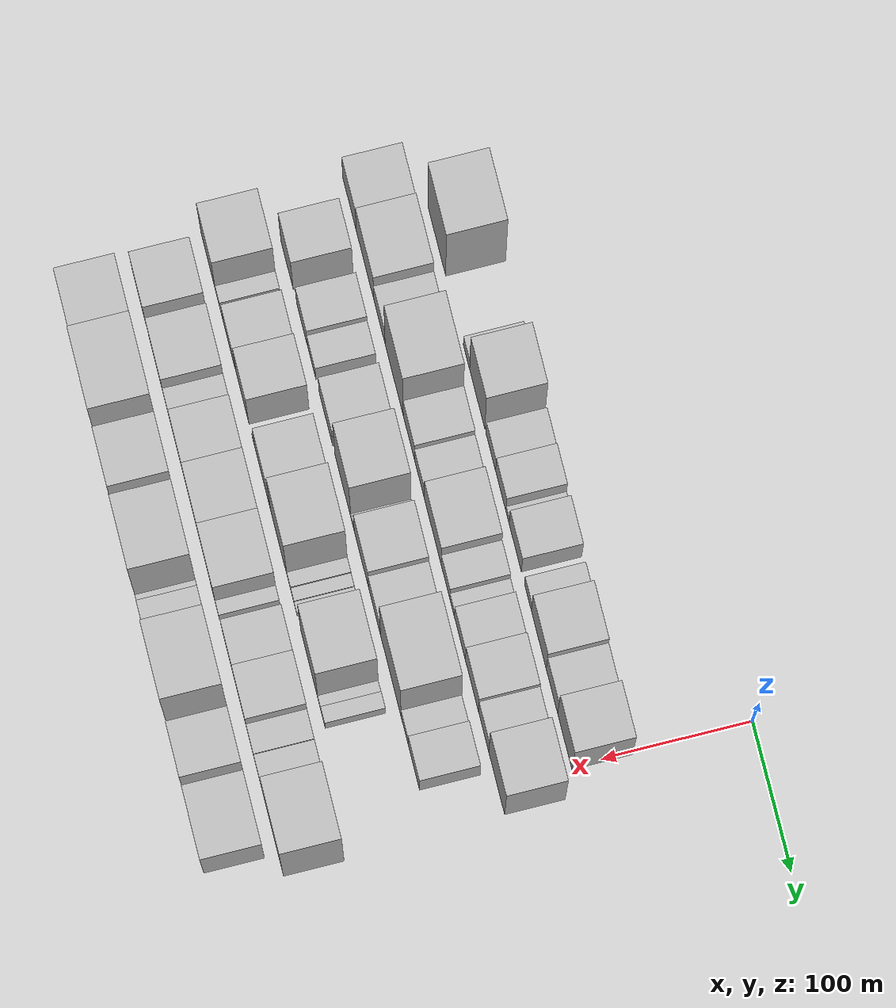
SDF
<sdf version="1.6">
 <world name="default">
  <include><name>ground_plane_1</name><uri>model://HANNAS_ground_plane</uri></include>
  <model name="building_14">
   <static>1</static>
   <pose>100.0000 -353.8614 0 0.000000 0.000000 0.000000</pose>
   <link name="link">
    <pose>0 0 72.00 0 0 0</pose>
    <collision name="collision"><geometry><box><size>40.0000 47.6542 144.0000</size></box></geometry></collision>
    <visual name="visual">
     <cast_shadows>0</cast_shadows>
     <geometry><box><size>40.0000 47.6542 144.0000</size></box></geometry>
     <material>
      <script>
       <uri>model://HANNAS_wall/materials/scripts</uri>
       <uri>model://HANNAS_wall/materials/textures</uri>
       <name>vrc/HANNAS_wall</name>
      </script>
     </material>
    </visual>
   </link>
  </model>
  <model name="building_15">
   <static>1</static>
   <pose>100.0000 -274.9148 0 0.000000 0.000000 0.000000</pose>
   <link name="link">
    <pose>0 0 16.50 0 0 0</pose>
    <collision name="collision"><geometry><box><size>40.0000 16.7463 33.0000</size></box></geometry></collision>
    <visual name="visual">
     <cast_shadows>0</cast_shadows>
     <geometry><box><size>40.0000 16.7463 33.0000</size></box></geometry>
     <material>
      <script>
       <uri>model://HANNAS_wall/materials/scripts</uri>
       <uri>model://HANNAS_wall/materials/textures</uri>
       <name>vrc/HANNAS_wall</name>
      </script>
     </material>
    </visual>
   </link>
  </model>
  <model name="building_16">
   <static>1</static>
   <pose>100.0000 -246.4983 0 0.000000 0.000000 0.000000</pose>
   <link name="link">
    <pose>0 0 61.50 0 0 0</pose>
    <collision name="collision"><geometry><box><size>40.0000 40.0867 123.0000</size></box></geometry></collision>
    <visual name="visual">
     <cast_shadows>0</cast_shadows>
     <geometry><box><size>40.0000 40.0867 123.0000</size></box></geometry>
     <material>
      <script>
       <uri>model://HANNAS_wall/materials/scripts</uri>
       <uri>model://HANNAS_wall/materials/textures</uri>
       <name>vrc/HANNAS_wall</name>
      </script>
     </material>
    </visual>
   </link>
  </model>
  <model name="building_17">
   <static>1</static>
   <pose>100.0000 -210.7944 0 0.000000 0.000000 0.000000</pose>
   <link name="link">
    <pose>0 0 22.50 0 0 0</pose>
    <collision name="collision"><geometry><box><size>40.0000 25.3211 45.0000</size></box></geometry></collision>
    <visual name="visual">
     <cast_shadows>0</cast_shadows>
     <geometry><box><size>40.0000 25.3211 45.0000</size></box></geometry>
     <material>
      <script>
       <uri>model://HANNAS_wall/materials/scripts</uri>
       <uri>model://HANNAS_wall/materials/textures</uri>
       <name>vrc/HANNAS_wall</name>
      </script>
     </material>
    </visual>
   </link>
  </model>
  <model name="building_18">
   <static>1</static>
   <pose>100.0000 -184.6230 0 0.000000 0.000000 0.000000</pose>
   <link name="link">
    <pose>0 0 27.00 0 0 0</pose>
    <collision name="collision"><geometry><box><size>40.0000 27.0217 54.0000</size></box></geometry></collision>
    <visual name="visual">
     <cast_shadows>0</cast_shadows>
     <geometry><box><size>40.0000 27.0217 54.0000</size></box></geometry>
     <material>
      <script>
       <uri>model://HANNAS_wall/materials/scripts</uri>
       <uri>model://HANNAS_wall/materials/textures</uri>
       <name>vrc/HANNAS_wall</name>
      </script>
     </material>
    </visual>
   </link>
  </model>
  <model name="building_19">
   <static>1</static>
   <pose>100.0000 -166.8143 0 0.000000 0.000000 0.000000</pose>
   <link name="link">
    <pose>0 0 10.50 0 0 0</pose>
    <collision name="collision"><geometry><box><size>40.0000 8.5957 21.0000</size></box></geometry></collision>
    <visual name="visual">
     <cast_shadows>0</cast_shadows>
     <geometry><box><size>40.0000 8.5957 21.0000</size></box></geometry>
     <material>
      <script>
       <uri>model://HANNAS_wall/materials/scripts</uri>
       <uri>model://HANNAS_wall/materials/textures</uri>
       <name>vrc/HANNAS_wall</name>
      </script>
     </material>
    </visual>
   </link>
  </model>
  <model name="building_20">
   <static>1</static>
   <pose>100.0000 -146.4526 0 0.000000 0.000000 0.000000</pose>
   <link name="link">
    <pose>0 0 30.00 0 0 0</pose>
    <collision name="collision"><geometry><box><size>40.0000 32.1276 60.0000</size></box></geometry></collision>
    <visual name="visual">
     <cast_shadows>0</cast_shadows>
     <geometry><box><size>40.0000 32.1276 60.0000</size></box></geometry>
     <material>
      <script>
       <uri>model://HANNAS_wall/materials/scripts</uri>
       <uri>model://HANNAS_wall/materials/textures</uri>
       <name>vrc/HANNAS_wall</name>
      </script>
     </material>
    </visual>
   </link>
  </model>
  <model name="building_21">
   <static>1</static>
   <pose>100.0000 -113.3025 0 0.000000 0.000000 0.000000</pose>
   <link name="link">
    <pose>0 0 16.50 0 0 0</pose>
    <collision name="collision"><geometry><box><size>40.0000 18.1728 33.0000</size></box></geometry></collision>
    <visual name="visual">
     <cast_shadows>0</cast_shadows>
     <geometry><box><size>40.0000 18.1728 33.0000</size></box></geometry>
     <material>
      <script>
       <uri>model://HANNAS_wall/materials/scripts</uri>
       <uri>model://HANNAS_wall/materials/textures</uri>
       <name>vrc/HANNAS_wall</name>
      </script>
     </material>
    </visual>
   </link>
  </model>
  <model name="building_22">
   <static>1</static>
   <pose>100.0000 -84.8160 0 0.000000 0.000000 0.000000</pose>
   <link name="link">
    <pose>0 0 37.50 0 0 0</pose>
    <collision name="collision"><geometry><box><size>40.0000 38.8002 75.0000</size></box></geometry></collision>
    <visual name="visual">
     <cast_shadows>0</cast_shadows>
     <geometry><box><size>40.0000 38.8002 75.0000</size></box></geometry>
     <material>
      <script>
       <uri>model://HANNAS_wall/materials/scripts</uri>
       <uri>model://HANNAS_wall/materials/textures</uri>
       <name>vrc/HANNAS_wall</name>
      </script>
     </material>
    </visual>
   </link>
  </model>
  <model name="building_23">
   <static>1</static>
   <pose>100.0000 -50.5812 0 0.000000 0.000000 0.000000</pose>
   <link name="link">
    <pose>0 0 28.50 0 0 0</pose>
    <collision name="collision"><geometry><box><size>40.0000 29.6695 57.0000</size></box></geometry></collision>
    <visual name="visual">
     <cast_shadows>0</cast_shadows>
     <geometry><box><size>40.0000 29.6695 57.0000</size></box></geometry>
     <material>
      <script>
       <uri>model://HANNAS_wall/materials/scripts</uri>
       <uri>model://HANNAS_wall/materials/textures</uri>
       <name>vrc/HANNAS_wall</name>
      </script>
     </material>
    </visual>
   </link>
  </model>
  <model name="building_24">
   <static>1</static>
   <pose>100.0000 -17.0833 0 0.000000 0.000000 0.000000</pose>
   <link name="link">
    <pose>0 0 48.00 0 0 0</pose>
    <collision name="collision"><geometry><box><size>40.0000 37.3264 96.0000</size></box></geometry></collision>
    <visual name="visual">
     <cast_shadows>0</cast_shadows>
     <geometry><box><size>40.0000 37.3264 96.0000</size></box></geometry>
     <material>
      <script>
       <uri>model://HANNAS_wall/materials/scripts</uri>
       <uri>model://HANNAS_wall/materials/textures</uri>
       <name>vrc/HANNAS_wall</name>
      </script>
     </material>
    </visual>
   </link>
  </model>
  <model name="building_57">
   <static>1</static>
   <pose>149.0000 -390.7551 0 0.000000 0.000000 0.000000</pose>
   <link name="link">
    <pose>0 0 34.50 0 0 0</pose>
    <collision name="collision"><geometry><box><size>40.0000 36.4168 69.0000</size></box></geometry></collision>
    <visual name="visual">
     <cast_shadows>0</cast_shadows>
     <geometry><box><size>40.0000 36.4168 69.0000</size></box></geometry>
     <material>
      <script>
       <uri>model://HANNAS_wall/materials/scripts</uri>
       <uri>model://HANNAS_wall/materials/textures</uri>
       <name>vrc/HANNAS_wall</name>
      </script>
     </material>
    </visual>
   </link>
  </model>
  <model name="building_58">
   <static>1</static>
   <pose>149.0000 -349.2322 0 0.000000 0.000000 0.000000</pose>
   <link name="link">
    <pose>0 0 40.50 0 0 0</pose>
    <collision name="collision"><geometry><box><size>40.0000 46.6289 81.0000</size></box></geometry></collision>
    <visual name="visual">
     <cast_shadows>0</cast_shadows>
     <geometry><box><size>40.0000 46.6289 81.0000</size></box></geometry>
     <material>
      <script>
       <uri>model://HANNAS_wall/materials/scripts</uri>
       <uri>model://HANNAS_wall/materials/textures</uri>
       <name>vrc/HANNAS_wall</name>
      </script>
     </material>
    </visual>
   </link>
  </model>
  <model name="building_59">
   <static>1</static>
   <pose>149.0000 -310.9135 0 0.000000 0.000000 0.000000</pose>
   <link name="link">
    <pose>0 0 25.50 0 0 0</pose>
    <collision name="collision"><geometry><box><size>40.0000 30.0086 51.0000</size></box></geometry></collision>
    <visual name="visual">
     <cast_shadows>0</cast_shadows>
     <geometry><box><size>40.0000 30.0086 51.0000</size></box></geometry>
     <material>
      <script>
       <uri>model://HANNAS_wall/materials/scripts</uri>
       <uri>model://HANNAS_wall/materials/textures</uri>
       <name>vrc/HANNAS_wall</name>
      </script>
     </material>
    </visual>
   </link>
  </model>
  <model name="building_60">
   <static>1</static>
   <pose>149.0000 -271.8785 0 0.000000 0.000000 0.000000</pose>
   <link name="link">
    <pose>0 0 72.00 0 0 0</pose>
    <collision name="collision"><geometry><box><size>40.0000 48.0614 144.0000</size></box></geometry></collision>
    <visual name="visual">
     <cast_shadows>0</cast_shadows>
     <geometry><box><size>40.0000 48.0614 144.0000</size></box></geometry>
     <material>
      <script>
       <uri>model://HANNAS_wall/materials/scripts</uri>
       <uri>model://HANNAS_wall/materials/textures</uri>
       <name>vrc/HANNAS_wall</name>
      </script>
     </material>
    </visual>
   </link>
  </model>
  <model name="building_61">
   <static>1</static>
   <pose>149.0000 -232.8323 0 0.000000 0.000000 0.000000</pose>
   <link name="link">
    <pose>0 0 30.00 0 0 0</pose>
    <collision name="collision"><geometry><box><size>40.0000 30.0309 60.0000</size></box></geometry></collision>
    <visual name="visual">
     <cast_shadows>0</cast_shadows>
     <geometry><box><size>40.0000 30.0309 60.0000</size></box></geometry>
     <material>
      <script>
       <uri>model://HANNAS_wall/materials/scripts</uri>
       <uri>model://HANNAS_wall/materials/textures</uri>
       <name>vrc/HANNAS_wall</name>
      </script>
     </material>
    </visual>
   </link>
  </model>
  <model name="building_62">
   <static>1</static>
   <pose>149.0000 -204.7419 0 0.000000 0.000000 0.000000</pose>
   <link name="link">
    <pose>0 0 22.50 0 0 0</pose>
    <collision name="collision"><geometry><box><size>40.0000 26.1500 45.0000</size></box></geometry></collision>
    <visual name="visual">
     <cast_shadows>0</cast_shadows>
     <geometry><box><size>40.0000 26.1500 45.0000</size></box></geometry>
     <material>
      <script>
       <uri>model://HANNAS_wall/materials/scripts</uri>
       <uri>model://HANNAS_wall/materials/textures</uri>
       <name>vrc/HANNAS_wall</name>
      </script>
     </material>
    </visual>
   </link>
  </model>
  <model name="building_63">
   <static>1</static>
   <pose>149.0000 -169.5658 0 0.000000 0.000000 0.000000</pose>
   <link name="link">
    <pose>0 0 37.50 0 0 0</pose>
    <collision name="collision"><geometry><box><size>40.0000 44.2023 75.0000</size></box></geometry></collision>
    <visual name="visual">
     <cast_shadows>0</cast_shadows>
     <geometry><box><size>40.0000 44.2023 75.0000</size></box></geometry>
     <material>
      <script>
       <uri>model://HANNAS_wall/materials/scripts</uri>
       <uri>model://HANNAS_wall/materials/textures</uri>
       <name>vrc/HANNAS_wall</name>
      </script>
     </material>
    </visual>
   </link>
  </model>
  <model name="building_64">
   <static>1</static>
   <pose>149.0000 -136.0340 0 0.000000 0.000000 0.000000</pose>
   <link name="link">
    <pose>0 0 22.50 0 0 0</pose>
    <collision name="collision"><geometry><box><size>40.0000 22.8614 45.0000</size></box></geometry></collision>
    <visual name="visual">
     <cast_shadows>0</cast_shadows>
     <geometry><box><size>40.0000 22.8614 45.0000</size></box></geometry>
     <material>
      <script>
       <uri>model://HANNAS_wall/materials/scripts</uri>
       <uri>model://HANNAS_wall/materials/textures</uri>
       <name>vrc/HANNAS_wall</name>
      </script>
     </material>
    </visual>
   </link>
  </model>
  <model name="building_65">
   <static>1</static>
   <pose>149.0000 -118.4109 0 0.000000 0.000000 0.000000</pose>
   <link name="link">
    <pose>0 0 13.50 0 0 0</pose>
    <collision name="collision"><geometry><box><size>40.0000 12.3848 27.0000</size></box></geometry></collision>
    <visual name="visual">
     <cast_shadows>0</cast_shadows>
     <geometry><box><size>40.0000 12.3848 27.0000</size></box></geometry>
     <material>
      <script>
       <uri>model://HANNAS_wall/materials/scripts</uri>
       <uri>model://HANNAS_wall/materials/textures</uri>
       <name>vrc/HANNAS_wall</name>
      </script>
     </material>
    </visual>
   </link>
  </model>
  <model name="building_66">
   <static>1</static>
   <pose>149.0000 -97.8057 0 0.000000 0.000000 0.000000</pose>
   <link name="link">
    <pose>0 0 25.50 0 0 0</pose>
    <collision name="collision"><geometry><box><size>40.0000 28.8256 51.0000</size></box></geometry></collision>
    <visual name="visual">
     <cast_shadows>0</cast_shadows>
     <geometry><box><size>40.0000 28.8256 51.0000</size></box></geometry>
     <material>
      <script>
       <uri>model://HANNAS_wall/materials/scripts</uri>
       <uri>model://HANNAS_wall/materials/textures</uri>
       <name>vrc/HANNAS_wall</name>
      </script>
     </material>
    </visual>
   </link>
  </model>
  <model name="building_67">
   <static>1</static>
   <pose>149.0000 -66.2988 0 0.000000 0.000000 0.000000</pose>
   <link name="link">
    <pose>0 0 33.00 0 0 0</pose>
    <collision name="collision"><geometry><box><size>40.0000 34.1881 66.0000</size></box></geometry></collision>
    <visual name="visual">
     <cast_shadows>0</cast_shadows>
     <geometry><box><size>40.0000 34.1881 66.0000</size></box></geometry>
     <material>
      <script>
       <uri>model://HANNAS_wall/materials/scripts</uri>
       <uri>model://HANNAS_wall/materials/textures</uri>
       <name>vrc/HANNAS_wall</name>
      </script>
     </material>
    </visual>
   </link>
  </model>
  <model name="building_68">
   <static>1</static>
   <pose>149.0000 -35.6842 0 0.000000 0.000000 0.000000</pose>
   <link name="link">
    <pose>0 0 27.00 0 0 0</pose>
    <collision name="collision"><geometry><box><size>40.0000 27.0412 54.0000</size></box></geometry></collision>
    <visual name="visual">
     <cast_shadows>0</cast_shadows>
     <geometry><box><size>40.0000 27.0412 54.0000</size></box></geometry>
     <material>
      <script>
       <uri>model://HANNAS_wall/materials/scripts</uri>
       <uri>model://HANNAS_wall/materials/textures</uri>
       <name>vrc/HANNAS_wall</name>
      </script>
     </material>
    </visual>
   </link>
  </model>
  <model name="building_69">
   <static>1</static>
   <pose>149.0000 -1.4894 0 0.000000 0.000000 0.000000</pose>
   <link name="link">
    <pose>0 0 55.50 0 0 0</pose>
    <collision name="collision"><geometry><box><size>40.0000 41.3484 111.0000</size></box></geometry></collision>
    <visual name="visual">
     <cast_shadows>0</cast_shadows>
     <geometry><box><size>40.0000 41.3484 111.0000</size></box></geometry>
     <material>
      <script>
       <uri>model://HANNAS_wall/materials/scripts</uri>
       <uri>model://HANNAS_wall/materials/textures</uri>
       <name>vrc/HANNAS_wall</name>
      </script>
     </material>
    </visual>
   </link>
  </model>
  <model name="building_110">
   <static>1</static>
   <pose>198.0000 -361.9411 0 0.000000 0.000000 0.000000</pose>
   <link name="link">
    <pose>0 0 48.00 0 0 0</pose>
    <collision name="collision"><geometry><box><size>40.0000 33.1321 96.0000</size></box></geometry></collision>
    <visual name="visual">
     <cast_shadows>0</cast_shadows>
     <geometry><box><size>40.0000 33.1321 96.0000</size></box></geometry>
     <material>
      <script>
       <uri>model://HANNAS_wall/materials/scripts</uri>
       <uri>model://HANNAS_wall/materials/textures</uri>
       <name>vrc/HANNAS_wall</name>
      </script>
     </material>
    </visual>
   </link>
  </model>
  <model name="building_111">
   <static>1</static>
   <pose>198.0000 -321.6002 0 0.000000 0.000000 0.000000</pose>
   <link name="link">
    <pose>0 0 28.50 0 0 0</pose>
    <collision name="collision"><geometry><box><size>40.0000 29.5497 57.0000</size></box></geometry></collision>
    <visual name="visual">
     <cast_shadows>0</cast_shadows>
     <geometry><box><size>40.0000 29.5497 57.0000</size></box></geometry>
     <material>
      <script>
       <uri>model://HANNAS_wall/materials/scripts</uri>
       <uri>model://HANNAS_wall/materials/textures</uri>
       <name>vrc/HANNAS_wall</name>
      </script>
     </material>
    </visual>
   </link>
  </model>
  <model name="building_112">
   <static>1</static>
   <pose>198.0000 -295.6852 0 0.000000 0.000000 0.000000</pose>
   <link name="link">
    <pose>0 0 21.00 0 0 0</pose>
    <collision name="collision"><geometry><box><size>40.0000 22.2805 42.0000</size></box></geometry></collision>
    <visual name="visual">
     <cast_shadows>0</cast_shadows>
     <geometry><box><size>40.0000 22.2805 42.0000</size></box></geometry>
     <material>
      <script>
       <uri>model://HANNAS_wall/materials/scripts</uri>
       <uri>model://HANNAS_wall/materials/textures</uri>
       <name>vrc/HANNAS_wall</name>
      </script>
     </material>
    </visual>
   </link>
  </model>
  <model name="building_113">
   <static>1</static>
   <pose>198.0000 -257.6338 0 0.000000 0.000000 0.000000</pose>
   <link name="link">
    <pose>0 0 30.00 0 0 0</pose>
    <collision name="collision"><geometry><box><size>40.0000 35.8221 60.0000</size></box></geometry></collision>
    <visual name="visual">
     <cast_shadows>0</cast_shadows>
     <geometry><box><size>40.0000 35.8221 60.0000</size></box></geometry>
     <material>
      <script>
       <uri>model://HANNAS_wall/materials/scripts</uri>
       <uri>model://HANNAS_wall/materials/textures</uri>
       <name>vrc/HANNAS_wall</name>
      </script>
     </material>
    </visual>
   </link>
  </model>
  <model name="building_114">
   <static>1</static>
   <pose>198.0000 -212.4608 0 0.000000 0.000000 0.000000</pose>
   <link name="link">
    <pose>0 0 64.50 0 0 0</pose>
    <collision name="collision"><geometry><box><size>40.0000 42.5239 129.0000</size></box></geometry></collision>
    <visual name="visual">
     <cast_shadows>0</cast_shadows>
     <geometry><box><size>40.0000 42.5239 129.0000</size></box></geometry>
     <material>
      <script>
       <uri>model://HANNAS_wall/materials/scripts</uri>
       <uri>model://HANNAS_wall/materials/textures</uri>
       <name>vrc/HANNAS_wall</name>
      </script>
     </material>
    </visual>
   </link>
  </model>
  <model name="building_115">
   <static>1</static>
   <pose>198.0000 -186.7463 0 0.000000 0.000000 0.000000</pose>
   <link name="link">
    <pose>0 0 9.00 0 0 0</pose>
    <collision name="collision"><geometry><box><size>40.0000 8.9051 18.0000</size></box></geometry></collision>
    <visual name="visual">
     <cast_shadows>0</cast_shadows>
     <geometry><box><size>40.0000 8.9051 18.0000</size></box></geometry>
     <material>
      <script>
       <uri>model://HANNAS_wall/materials/scripts</uri>
       <uri>model://HANNAS_wall/materials/textures</uri>
       <name>vrc/HANNAS_wall</name>
      </script>
     </material>
    </visual>
   </link>
  </model>
  <model name="building_116">
   <static>1</static>
   <pose>198.0000 -163.3867 0 0.000000 0.000000 0.000000</pose>
   <link name="link">
    <pose>0 0 36.00 0 0 0</pose>
    <collision name="collision"><geometry><box><size>40.0000 37.8140 72.0000</size></box></geometry></collision>
    <visual name="visual">
     <cast_shadows>0</cast_shadows>
     <geometry><box><size>40.0000 37.8140 72.0000</size></box></geometry>
     <material>
      <script>
       <uri>model://HANNAS_wall/materials/scripts</uri>
       <uri>model://HANNAS_wall/materials/textures</uri>
       <name>vrc/HANNAS_wall</name>
      </script>
     </material>
    </visual>
   </link>
  </model>
  <model name="building_117">
   <static>1</static>
   <pose>198.0000 -128.5508 0 0.000000 0.000000 0.000000</pose>
   <link name="link">
    <pose>0 0 27.00 0 0 0</pose>
    <collision name="collision"><geometry><box><size>40.0000 31.8577 54.0000</size></box></geometry></collision>
    <visual name="visual">
     <cast_shadows>0</cast_shadows>
     <geometry><box><size>40.0000 31.8577 54.0000</size></box></geometry>
     <material>
      <script>
       <uri>model://HANNAS_wall/materials/scripts</uri>
       <uri>model://HANNAS_wall/materials/textures</uri>
       <name>vrc/HANNAS_wall</name>
      </script>
     </material>
    </visual>
   </link>
  </model>
  <model name="building_118">
   <static>1</static>
   <pose>198.0000 -85.4054 0 0.000000 0.000000 0.000000</pose>
   <link name="link">
    <pose>0 0 69.00 0 0 0</pose>
    <collision name="collision"><geometry><box><size>40.0000 54.4332 138.0000</size></box></geometry></collision>
    <visual name="visual">
     <cast_shadows>0</cast_shadows>
     <geometry><box><size>40.0000 54.4332 138.0000</size></box></geometry>
     <material>
      <script>
       <uri>model://HANNAS_wall/materials/scripts</uri>
       <uri>model://HANNAS_wall/materials/textures</uri>
       <name>vrc/HANNAS_wall</name>
      </script>
     </material>
    </visual>
   </link>
  </model>
  <model name="building_119">
   <static>1</static>
   <pose>198.0000 -48.5401 0 0.000000 0.000000 0.000000</pose>
   <link name="link">
    <pose>0 0 18.00 0 0 0</pose>
    <collision name="collision"><geometry><box><size>40.0000 19.2974 36.0000</size></box></geometry></collision>
    <visual name="visual">
     <cast_shadows>0</cast_shadows>
     <geometry><box><size>40.0000 19.2974 36.0000</size></box></geometry>
     <material>
      <script>
       <uri>model://HANNAS_wall/materials/scripts</uri>
       <uri>model://HANNAS_wall/materials/textures</uri>
       <name>vrc/HANNAS_wall</name>
      </script>
     </material>
    </visual>
   </link>
  </model>
  <model name="building_120">
   <static>1</static>
   <pose>198.0000 -24.1284 0 0.000000 0.000000 0.000000</pose>
   <link name="link">
    <pose>0 0 27.00 0 0 0</pose>
    <collision name="collision"><geometry><box><size>40.0000 29.5259 54.0000</size></box></geometry></collision>
    <visual name="visual">
     <cast_shadows>0</cast_shadows>
     <geometry><box><size>40.0000 29.5259 54.0000</size></box></geometry>
     <material>
      <script>
       <uri>model://HANNAS_wall/materials/scripts</uri>
       <uri>model://HANNAS_wall/materials/textures</uri>
       <name>vrc/HANNAS_wall</name>
      </script>
     </material>
    </visual>
   </link>
  </model>
  <model name="building_157">
   <static>1</static>
   <pose>247.0000 -375.6848 0 0.000000 0.000000 0.000000</pose>
   <link name="link">
    <pose>0 0 52.50 0 0 0</pose>
    <collision name="collision"><geometry><box><size>40.0000 39.7121 105.0000</size></box></geometry></collision>
    <visual name="visual">
     <cast_shadows>0</cast_shadows>
     <geometry><box><size>40.0000 39.7121 105.0000</size></box></geometry>
     <material>
      <script>
       <uri>model://HANNAS_wall/materials/scripts</uri>
       <uri>model://HANNAS_wall/materials/textures</uri>
       <name>vrc/HANNAS_wall</name>
      </script>
     </material>
    </visual>
   </link>
  </model>
  <model name="building_158">
   <static>1</static>
   <pose>247.0000 -349.9775 0 0.000000 0.000000 0.000000</pose>
   <link name="link">
    <pose>0 0 12.00 0 0 0</pose>
    <collision name="collision"><geometry><box><size>40.0000 11.7025 24.0000</size></box></geometry></collision>
    <visual name="visual">
     <cast_shadows>0</cast_shadows>
     <geometry><box><size>40.0000 11.7025 24.0000</size></box></geometry>
     <material>
      <script>
       <uri>model://HANNAS_wall/materials/scripts</uri>
       <uri>model://HANNAS_wall/materials/textures</uri>
       <name>vrc/HANNAS_wall</name>
      </script>
     </material>
    </visual>
   </link>
  </model>
  <model name="building_159">
   <static>1</static>
   <pose>247.0000 -340.3163 0 0.000000 0.000000 0.000000</pose>
   <link name="link">
    <pose>0 0 9.00 0 0 0</pose>
    <collision name="collision"><geometry><box><size>40.0000 7.6199 18.0000</size></box></geometry></collision>
    <visual name="visual">
     <cast_shadows>0</cast_shadows>
     <geometry><box><size>40.0000 7.6199 18.0000</size></box></geometry>
     <material>
      <script>
       <uri>model://HANNAS_wall/materials/scripts</uri>
       <uri>model://HANNAS_wall/materials/textures</uri>
       <name>vrc/HANNAS_wall</name>
      </script>
     </material>
    </visual>
   </link>
  </model>
  <model name="building_160">
   <static>1</static>
   <pose>247.0000 -318.7343 0 0.000000 0.000000 0.000000</pose>
   <link name="link">
    <pose>0 0 30.00 0 0 0</pose>
    <collision name="collision"><geometry><box><size>40.0000 35.5442 60.0000</size></box></geometry></collision>
    <visual name="visual">
     <cast_shadows>0</cast_shadows>
     <geometry><box><size>40.0000 35.5442 60.0000</size></box></geometry>
     <material>
      <script>
       <uri>model://HANNAS_wall/materials/scripts</uri>
       <uri>model://HANNAS_wall/materials/textures</uri>
       <name>vrc/HANNAS_wall</name>
      </script>
     </material>
    </visual>
   </link>
  </model>
  <model name="building_161">
   <static>1</static>
   <pose>247.0000 -283.8370 0 0.000000 0.000000 0.000000</pose>
   <link name="link">
    <pose>0 0 48.00 0 0 0</pose>
    <collision name="collision"><geometry><box><size>40.0000 34.2503 96.0000</size></box></geometry></collision>
    <visual name="visual">
     <cast_shadows>0</cast_shadows>
     <geometry><box><size>40.0000 34.2503 96.0000</size></box></geometry>
     <material>
      <script>
       <uri>model://HANNAS_wall/materials/scripts</uri>
       <uri>model://HANNAS_wall/materials/textures</uri>
       <name>vrc/HANNAS_wall</name>
      </script>
     </material>
    </visual>
   </link>
  </model>
  <model name="building_162">
   <static>1</static>
   <pose>247.0000 -254.6128 0 0.000000 0.000000 0.000000</pose>
   <link name="link">
    <pose>0 0 7.50 0 0 0</pose>
    <collision name="collision"><geometry><box><size>40.0000 6.1981 15.0000</size></box></geometry></collision>
    <visual name="visual">
     <cast_shadows>0</cast_shadows>
     <geometry><box><size>40.0000 6.1981 15.0000</size></box></geometry>
     <material>
      <script>
       <uri>model://HANNAS_wall/materials/scripts</uri>
       <uri>model://HANNAS_wall/materials/textures</uri>
       <name>vrc/HANNAS_wall</name>
      </script>
     </material>
    </visual>
   </link>
  </model>
  <model name="building_163">
   <static>1</static>
   <pose>247.0000 -230.2100 0 0.000000 0.000000 0.000000</pose>
   <link name="link">
    <pose>0 0 37.50 0 0 0</pose>
    <collision name="collision"><geometry><box><size>40.0000 42.6075 75.0000</size></box></geometry></collision>
    <visual name="visual">
     <cast_shadows>0</cast_shadows>
     <geometry><box><size>40.0000 42.6075 75.0000</size></box></geometry>
     <material>
      <script>
       <uri>model://HANNAS_wall/materials/scripts</uri>
       <uri>model://HANNAS_wall/materials/textures</uri>
       <name>vrc/HANNAS_wall</name>
      </script>
     </material>
    </visual>
   </link>
  </model>
  <model name="building_164">
   <static>1</static>
   <pose>247.0000 -186.5861 0 0.000000 0.000000 0.000000</pose>
   <link name="link">
    <pose>0 0 69.00 0 0 0</pose>
    <collision name="collision"><geometry><box><size>40.0000 44.6404 138.0000</size></box></geometry></collision>
    <visual name="visual">
     <cast_shadows>0</cast_shadows>
     <geometry><box><size>40.0000 44.6404 138.0000</size></box></geometry>
     <material>
      <script>
       <uri>model://HANNAS_wall/materials/scripts</uri>
       <uri>model://HANNAS_wall/materials/textures</uri>
       <name>vrc/HANNAS_wall</name>
      </script>
     </material>
    </visual>
   </link>
  </model>
  <model name="building_165">
   <static>1</static>
   <pose>247.0000 -159.1917 0 0.000000 0.000000 0.000000</pose>
   <link name="link">
    <pose>0 0 10.50 0 0 0</pose>
    <collision name="collision"><geometry><box><size>40.0000 10.1485 21.0000</size></box></geometry></collision>
    <visual name="visual">
     <cast_shadows>0</cast_shadows>
     <geometry><box><size>40.0000 10.1485 21.0000</size></box></geometry>
     <material>
      <script>
       <uri>model://HANNAS_wall/materials/scripts</uri>
       <uri>model://HANNAS_wall/materials/textures</uri>
       <name>vrc/HANNAS_wall</name>
      </script>
     </material>
    </visual>
   </link>
  </model>
  <model name="building_166">
   <static>1</static>
   <pose>247.0000 -149.6743 0 0.000000 0.000000 0.000000</pose>
   <link name="link">
    <pose>0 0 9.00 0 0 0</pose>
    <collision name="collision"><geometry><box><size>40.0000 8.8861 18.0000</size></box></geometry></collision>
    <visual name="visual">
     <cast_shadows>0</cast_shadows>
     <geometry><box><size>40.0000 8.8861 18.0000</size></box></geometry>
     <material>
      <script>
       <uri>model://HANNAS_wall/materials/scripts</uri>
       <uri>model://HANNAS_wall/materials/textures</uri>
       <name>vrc/HANNAS_wall</name>
      </script>
     </material>
    </visual>
   </link>
  </model>
  <model name="building_167">
   <static>1</static>
   <pose>247.0000 -141.5087 0 0.000000 0.000000 0.000000</pose>
   <link name="link">
    <pose>0 0 7.50 0 0 0</pose>
    <collision name="collision"><geometry><box><size>40.0000 7.4452 15.0000</size></box></geometry></collision>
    <visual name="visual">
     <cast_shadows>0</cast_shadows>
     <geometry><box><size>40.0000 7.4452 15.0000</size></box></geometry>
     <material>
      <script>
       <uri>model://HANNAS_wall/materials/scripts</uri>
       <uri>model://HANNAS_wall/materials/textures</uri>
       <name>vrc/HANNAS_wall</name>
      </script>
     </material>
    </visual>
   </link>
  </model>
  <model name="building_168">
   <static>1</static>
   <pose>247.0000 -105.0985 0 0.000000 0.000000 0.000000</pose>
   <link name="link">
    <pose>0 0 64.50 0 0 0</pose>
    <collision name="collision"><geometry><box><size>40.0000 45.3751 129.0000</size></box></geometry></collision>
    <visual name="visual">
     <cast_shadows>0</cast_shadows>
     <geometry><box><size>40.0000 45.3751 129.0000</size></box></geometry>
     <material>
      <script>
       <uri>model://HANNAS_wall/materials/scripts</uri>
       <uri>model://HANNAS_wall/materials/textures</uri>
       <name>vrc/HANNAS_wall</name>
      </script>
     </material>
    </visual>
   </link>
  </model>
  <model name="building_169">
   <static>1</static>
   <pose>247.0000 -78.2397 0 0.000000 0.000000 0.000000</pose>
   <link name="link">
    <pose>0 0 9.00 0 0 0</pose>
    <collision name="collision"><geometry><box><size>40.0000 8.3426 18.0000</size></box></geometry></collision>
    <visual name="visual">
     <cast_shadows>0</cast_shadows>
     <geometry><box><size>40.0000 8.3426 18.0000</size></box></geometry>
     <material>
      <script>
       <uri>model://HANNAS_wall/materials/scripts</uri>
       <uri>model://HANNAS_wall/materials/textures</uri>
       <name>vrc/HANNAS_wall</name>
      </script>
     </material>
    </visual>
   </link>
  </model>
  <model name="building_170">
   <static>1</static>
   <pose>247.0000 -68.4875 0 0.000000 0.000000 0.000000</pose>
   <link name="link">
    <pose>0 0 13.50 0 0 0</pose>
    <collision name="collision"><geometry><box><size>40.0000 11.1616 27.0000</size></box></geometry></collision>
    <visual name="visual">
     <cast_shadows>0</cast_shadows>
     <geometry><box><size>40.0000 11.1616 27.0000</size></box></geometry>
     <material>
      <script>
       <uri>model://HANNAS_wall/materials/scripts</uri>
       <uri>model://HANNAS_wall/materials/textures</uri>
       <name>vrc/HANNAS_wall</name>
      </script>
     </material>
    </visual>
   </link>
  </model>
  <model name="building_201">
   <static>1</static>
   <pose>296.0000 -365.0567 0 0.000000 0.000000 0.000000</pose>
   <link name="link">
    <pose>0 0 31.50 0 0 0</pose>
    <collision name="collision"><geometry><box><size>40.0000 37.3534 63.0000</size></box></geometry></collision>
    <visual name="visual">
     <cast_shadows>0</cast_shadows>
     <geometry><box><size>40.0000 37.3534 63.0000</size></box></geometry>
     <material>
      <script>
       <uri>model://HANNAS_wall/materials/scripts</uri>
       <uri>model://HANNAS_wall/materials/textures</uri>
       <name>vrc/HANNAS_wall</name>
      </script>
     </material>
    </visual>
   </link>
  </model>
  <model name="building_202">
   <static>1</static>
   <pose>296.0000 -317.7192 0 0.000000 0.000000 0.000000</pose>
   <link name="link">
    <pose>0 0 34.50 0 0 0</pose>
    <collision name="collision"><geometry><box><size>40.0000 41.3217 69.0000</size></box></geometry></collision>
    <visual name="visual">
     <cast_shadows>0</cast_shadows>
     <geometry><box><size>40.0000 41.3217 69.0000</size></box></geometry>
     <material>
      <script>
       <uri>model://HANNAS_wall/materials/scripts</uri>
       <uri>model://HANNAS_wall/materials/textures</uri>
       <name>vrc/HANNAS_wall</name>
      </script>
     </material>
    </visual>
   </link>
  </model>
  <model name="building_203">
   <static>1</static>
   <pose>296.0000 -287.2829 0 0.000000 0.000000 0.000000</pose>
   <link name="link">
    <pose>0 0 18.00 0 0 0</pose>
    <collision name="collision"><geometry><box><size>40.0000 19.5509 36.0000</size></box></geometry></collision>
    <visual name="visual">
     <cast_shadows>0</cast_shadows>
     <geometry><box><size>40.0000 19.5509 36.0000</size></box></geometry>
     <material>
      <script>
       <uri>model://HANNAS_wall/materials/scripts</uri>
       <uri>model://HANNAS_wall/materials/textures</uri>
       <name>vrc/HANNAS_wall</name>
      </script>
     </material>
    </visual>
   </link>
  </model>
  <model name="building_204">
   <static>1</static>
   <pose>296.0000 -259.6409 0 0.000000 0.000000 0.000000</pose>
   <link name="link">
    <pose>0 0 34.50 0 0 0</pose>
    <collision name="collision"><geometry><box><size>40.0000 35.7330 69.0000</size></box></geometry></collision>
    <visual name="visual">
     <cast_shadows>0</cast_shadows>
     <geometry><box><size>40.0000 35.7330 69.0000</size></box></geometry>
     <material>
      <script>
       <uri>model://HANNAS_wall/materials/scripts</uri>
       <uri>model://HANNAS_wall/materials/textures</uri>
       <name>vrc/HANNAS_wall</name>
      </script>
     </material>
    </visual>
   </link>
  </model>
  <model name="building_205">
   <static>1</static>
   <pose>296.0000 -221.0312 0 0.000000 0.000000 0.000000</pose>
   <link name="link">
    <pose>0 0 36.00 0 0 0</pose>
    <collision name="collision"><geometry><box><size>40.0000 41.4863 72.0000</size></box></geometry></collision>
    <visual name="visual">
     <cast_shadows>0</cast_shadows>
     <geometry><box><size>40.0000 41.4863 72.0000</size></box></geometry>
     <material>
      <script>
       <uri>model://HANNAS_wall/materials/scripts</uri>
       <uri>model://HANNAS_wall/materials/textures</uri>
       <name>vrc/HANNAS_wall</name>
      </script>
     </material>
    </visual>
   </link>
  </model>
  <model name="building_206">
   <static>1</static>
   <pose>296.0000 -179.0006 0 0.000000 0.000000 0.000000</pose>
   <link name="link">
    <pose>0 0 40.50 0 0 0</pose>
    <collision name="collision"><geometry><box><size>40.0000 42.5749 81.0000</size></box></geometry></collision>
    <visual name="visual">
     <cast_shadows>0</cast_shadows>
     <geometry><box><size>40.0000 42.5749 81.0000</size></box></geometry>
     <material>
      <script>
       <uri>model://HANNAS_wall/materials/scripts</uri>
       <uri>model://HANNAS_wall/materials/textures</uri>
       <name>vrc/HANNAS_wall</name>
      </script>
     </material>
    </visual>
   </link>
  </model>
  <model name="building_207">
   <static>1</static>
   <pose>296.0000 -152.7512 0 0.000000 0.000000 0.000000</pose>
   <link name="link">
    <pose>0 0 10.50 0 0 0</pose>
    <collision name="collision"><geometry><box><size>40.0000 9.9239 21.0000</size></box></geometry></collision>
    <visual name="visual">
     <cast_shadows>0</cast_shadows>
     <geometry><box><size>40.0000 9.9239 21.0000</size></box></geometry>
     <material>
      <script>
       <uri>model://HANNAS_wall/materials/scripts</uri>
       <uri>model://HANNAS_wall/materials/textures</uri>
       <name>vrc/HANNAS_wall</name>
      </script>
     </material>
    </visual>
   </link>
  </model>
  <model name="building_208">
   <static>1</static>
   <pose>296.0000 -124.3588 0 0.000000 0.000000 0.000000</pose>
   <link name="link">
    <pose>0 0 30.00 0 0 0</pose>
    <collision name="collision"><geometry><box><size>40.0000 30.8609 60.0000</size></box></geometry></collision>
    <visual name="visual">
     <cast_shadows>0</cast_shadows>
     <geometry><box><size>40.0000 30.8609 60.0000</size></box></geometry>
     <material>
      <script>
       <uri>model://HANNAS_wall/materials/scripts</uri>
       <uri>model://HANNAS_wall/materials/textures</uri>
       <name>vrc/HANNAS_wall</name>
      </script>
     </material>
    </visual>
   </link>
  </model>
  <model name="building_209">
   <static>1</static>
   <pose>296.0000 -91.1146 0 0.000000 0.000000 0.000000</pose>
   <link name="link">
    <pose>0 0 33.00 0 0 0</pose>
    <collision name="collision"><geometry><box><size>40.0000 35.6274 66.0000</size></box></geometry></collision>
    <visual name="visual">
     <cast_shadows>0</cast_shadows>
     <geometry><box><size>40.0000 35.6274 66.0000</size></box></geometry>
     <material>
      <script>
       <uri>model://HANNAS_wall/materials/scripts</uri>
       <uri>model://HANNAS_wall/materials/textures</uri>
       <name>vrc/HANNAS_wall</name>
      </script>
     </material>
    </visual>
   </link>
  </model>
  <model name="building_210">
   <static>1</static>
   <pose>296.0000 -63.4068 0 0.000000 0.000000 0.000000</pose>
   <link name="link">
    <pose>0 0 19.50 0 0 0</pose>
    <collision name="collision"><geometry><box><size>40.0000 19.7883 39.0000</size></box></geometry></collision>
    <visual name="visual">
     <cast_shadows>0</cast_shadows>
     <geometry><box><size>40.0000 19.7883 39.0000</size></box></geometry>
     <material>
      <script>
       <uri>model://HANNAS_wall/materials/scripts</uri>
       <uri>model://HANNAS_wall/materials/textures</uri>
       <name>vrc/HANNAS_wall</name>
      </script>
     </material>
    </visual>
   </link>
  </model>
  <model name="building_211">
   <static>1</static>
   <pose>296.0000 -44.0047 0 0.000000 0.000000 0.000000</pose>
   <link name="link">
    <pose>0 0 18.00 0 0 0</pose>
    <collision name="collision"><geometry><box><size>40.0000 19.0159 36.0000</size></box></geometry></collision>
    <visual name="visual">
     <cast_shadows>0</cast_shadows>
     <geometry><box><size>40.0000 19.0159 36.0000</size></box></geometry>
     <material>
      <script>
       <uri>model://HANNAS_wall/materials/scripts</uri>
       <uri>model://HANNAS_wall/materials/textures</uri>
       <name>vrc/HANNAS_wall</name>
      </script>
     </material>
    </visual>
   </link>
  </model>
  <model name="building_212">
   <static>1</static>
   <pose>296.0000 -30.7629 0 0.000000 0.000000 0.000000</pose>
   <link name="link">
    <pose>0 0 7.50 0 0 0</pose>
    <collision name="collision"><geometry><box><size>40.0000 7.4677 15.0000</size></box></geometry></collision>
    <visual name="visual">
     <cast_shadows>0</cast_shadows>
     <geometry><box><size>40.0000 7.4677 15.0000</size></box></geometry>
     <material>
      <script>
       <uri>model://HANNAS_wall/materials/scripts</uri>
       <uri>model://HANNAS_wall/materials/textures</uri>
       <name>vrc/HANNAS_wall</name>
      </script>
     </material>
    </visual>
   </link>
  </model>
  <model name="building_213">
   <static>1</static>
   <pose>296.0000 -1.9973 0 0.000000 0.000000 0.000000</pose>
   <link name="link">
    <pose>0 0 70.50 0 0 0</pose>
    <collision name="collision"><geometry><box><size>40.0000 50.0634 141.0000</size></box></geometry></collision>
    <visual name="visual">
     <cast_shadows>0</cast_shadows>
     <geometry><box><size>40.0000 50.0634 141.0000</size></box></geometry>
     <material>
      <script>
       <uri>model://HANNAS_wall/materials/scripts</uri>
       <uri>model://HANNAS_wall/materials/textures</uri>
       <name>vrc/HANNAS_wall</name>
      </script>
     </material>
    </visual>
   </link>
  </model>
  <model name="building_255">
   <static>1</static>
   <pose>345.0000 -359.2868 0 0.000000 0.000000 0.000000</pose>
   <link name="link">
    <pose>0 0 40.50 0 0 0</pose>
    <collision name="collision"><geometry><box><size>40.0000 44.9658 81.0000</size></box></geometry></collision>
    <visual name="visual">
     <cast_shadows>0</cast_shadows>
     <geometry><box><size>40.0000 44.9658 81.0000</size></box></geometry>
     <material>
      <script>
       <uri>model://HANNAS_wall/materials/scripts</uri>
       <uri>model://HANNAS_wall/materials/textures</uri>
       <name>vrc/HANNAS_wall</name>
      </script>
     </material>
    </visual>
   </link>
  </model>
  <model name="building_256">
   <static>1</static>
   <pose>345.0000 -303.6323 0 0.000000 0.000000 0.000000</pose>
   <link name="link">
    <pose>0 0 75.00 0 0 0</pose>
    <collision name="collision"><geometry><box><size>40.0000 54.3431 150.0000</size></box></geometry></collision>
    <visual name="visual">
     <cast_shadows>0</cast_shadows>
     <geometry><box><size>40.0000 54.3431 150.0000</size></box></geometry>
     <material>
      <script>
       <uri>model://HANNAS_wall/materials/scripts</uri>
       <uri>model://HANNAS_wall/materials/textures</uri>
       <name>vrc/HANNAS_wall</name>
      </script>
     </material>
    </visual>
   </link>
  </model>
  <model name="building_257">
   <static>1</static>
   <pose>345.0000 -272.7457 0 0.000000 0.000000 0.000000</pose>
   <link name="link">
    <pose>0 0 7.50 0 0 0</pose>
    <collision name="collision"><geometry><box><size>40.0000 7.4301 15.0000</size></box></geometry></collision>
    <visual name="visual">
     <cast_shadows>0</cast_shadows>
     <geometry><box><size>40.0000 7.4301 15.0000</size></box></geometry>
     <material>
      <script>
       <uri>model://HANNAS_wall/materials/scripts</uri>
       <uri>model://HANNAS_wall/materials/textures</uri>
       <name>vrc/HANNAS_wall</name>
      </script>
     </material>
    </visual>
   </link>
  </model>
  <model name="building_258">
   <static>1</static>
   <pose>345.0000 -249.3782 0 0.000000 0.000000 0.000000</pose>
   <link name="link">
    <pose>0 0 63.00 0 0 0</pose>
    <collision name="collision"><geometry><box><size>40.0000 39.3050 126.0000</size></box></geometry></collision>
    <visual name="visual">
     <cast_shadows>0</cast_shadows>
     <geometry><box><size>40.0000 39.3050 126.0000</size></box></geometry>
     <material>
      <script>
       <uri>model://HANNAS_wall/materials/scripts</uri>
       <uri>model://HANNAS_wall/materials/textures</uri>
       <name>vrc/HANNAS_wall</name>
      </script>
     </material>
    </visual>
   </link>
  </model>
  <model name="building_259">
   <static>1</static>
   <pose>345.0000 -199.2107 0 0.000000 0.000000 0.000000</pose>
   <link name="link">
    <pose>0 0 66.00 0 0 0</pose>
    <collision name="collision"><geometry><box><size>40.0000 49.0300 132.0000</size></box></geometry></collision>
    <visual name="visual">
     <cast_shadows>0</cast_shadows>
     <geometry><box><size>40.0000 49.0300 132.0000</size></box></geometry>
     <material>
      <script>
       <uri>model://HANNAS_wall/materials/scripts</uri>
       <uri>model://HANNAS_wall/materials/textures</uri>
       <name>vrc/HANNAS_wall</name>
      </script>
     </material>
    </visual>
   </link>
  </model>
  <model name="building_260">
   <static>1</static>
   <pose>345.0000 -171.3745 0 0.000000 0.000000 0.000000</pose>
   <link name="link">
    <pose>0 0 7.50 0 0 0</pose>
    <collision name="collision"><geometry><box><size>40.0000 6.6425 15.0000</size></box></geometry></collision>
    <visual name="visual">
     <cast_shadows>0</cast_shadows>
     <geometry><box><size>40.0000 6.6425 15.0000</size></box></geometry>
     <material>
      <script>
       <uri>model://HANNAS_wall/materials/scripts</uri>
       <uri>model://HANNAS_wall/materials/textures</uri>
       <name>vrc/HANNAS_wall</name>
      </script>
     </material>
    </visual>
   </link>
  </model>
  <model name="building_261">
   <static>1</static>
   <pose>345.0000 -158.1478 0 0.000000 0.000000 0.000000</pose>
   <link name="link">
    <pose>0 0 18.00 0 0 0</pose>
    <collision name="collision"><geometry><box><size>40.0000 19.8108 36.0000</size></box></geometry></collision>
    <visual name="visual">
     <cast_shadows>0</cast_shadows>
     <geometry><box><size>40.0000 19.8108 36.0000</size></box></geometry>
     <material>
      <script>
       <uri>model://HANNAS_wall/materials/scripts</uri>
       <uri>model://HANNAS_wall/materials/textures</uri>
       <name>vrc/HANNAS_wall</name>
      </script>
     </material>
    </visual>
   </link>
  </model>
  <model name="building_262">
   <static>1</static>
   <pose>345.0000 -115.4501 0 0.000000 0.000000 0.000000</pose>
   <link name="link">
    <pose>0 0 69.00 0 0 0</pose>
    <collision name="collision"><geometry><box><size>40.0000 51.5847 138.0000</size></box></geometry></collision>
    <visual name="visual">
     <cast_shadows>0</cast_shadows>
     <geometry><box><size>40.0000 51.5847 138.0000</size></box></geometry>
     <material>
      <script>
       <uri>model://HANNAS_wall/materials/scripts</uri>
       <uri>model://HANNAS_wall/materials/textures</uri>
       <name>vrc/HANNAS_wall</name>
      </script>
     </material>
    </visual>
   </link>
  </model>
  <model name="building_263">
   <static>1</static>
   <pose>345.0000 -62.3303 0 0.000000 0.000000 0.000000</pose>
   <link name="link">
    <pose>0 0 48.00 0 0 0</pose>
    <collision name="collision"><geometry><box><size>40.0000 36.6548 96.0000</size></box></geometry></collision>
    <visual name="visual">
     <cast_shadows>0</cast_shadows>
     <geometry><box><size>40.0000 36.6548 96.0000</size></box></geometry>
     <material>
      <script>
       <uri>model://HANNAS_wall/materials/scripts</uri>
       <uri>model://HANNAS_wall/materials/textures</uri>
       <name>vrc/HANNAS_wall</name>
      </script>
     </material>
    </visual>
   </link>
  </model>
  <model name="building_264">
   <static>1</static>
   <pose>345.0000 -15.6384 0 0.000000 0.000000 0.000000</pose>
   <link name="link">
    <pose>0 0 43.50 0 0 0</pose>
    <collision name="collision"><geometry><box><size>40.0000 48.7291 87.0000</size></box></geometry></collision>
    <visual name="visual">
     <cast_shadows>0</cast_shadows>
     <geometry><box><size>40.0000 48.7291 87.0000</size></box></geometry>
     <material>
      <script>
       <uri>model://HANNAS_wall/materials/scripts</uri>
       <uri>model://HANNAS_wall/materials/textures</uri>
       <name>vrc/HANNAS_wall</name>
      </script>
     </material>
    </visual>
   </link>
  </model>
 </world>
</sdf>
